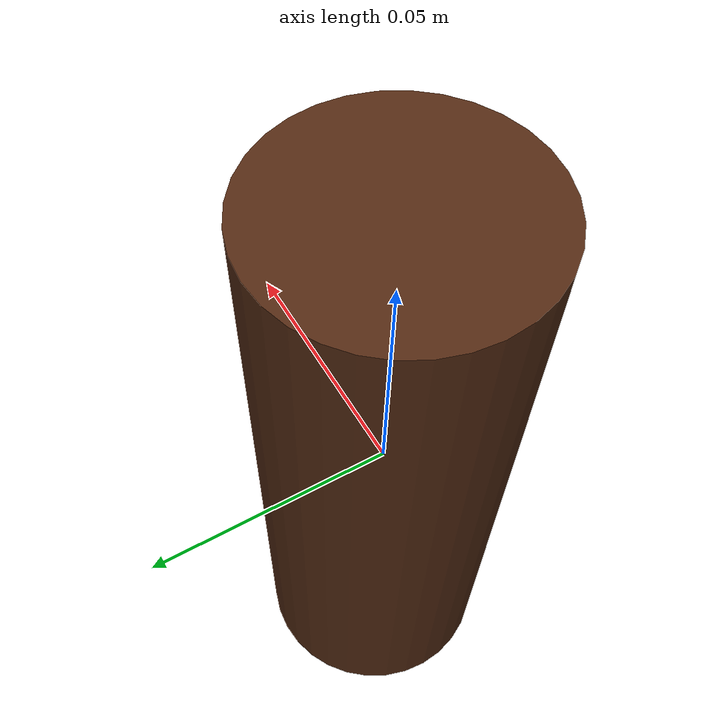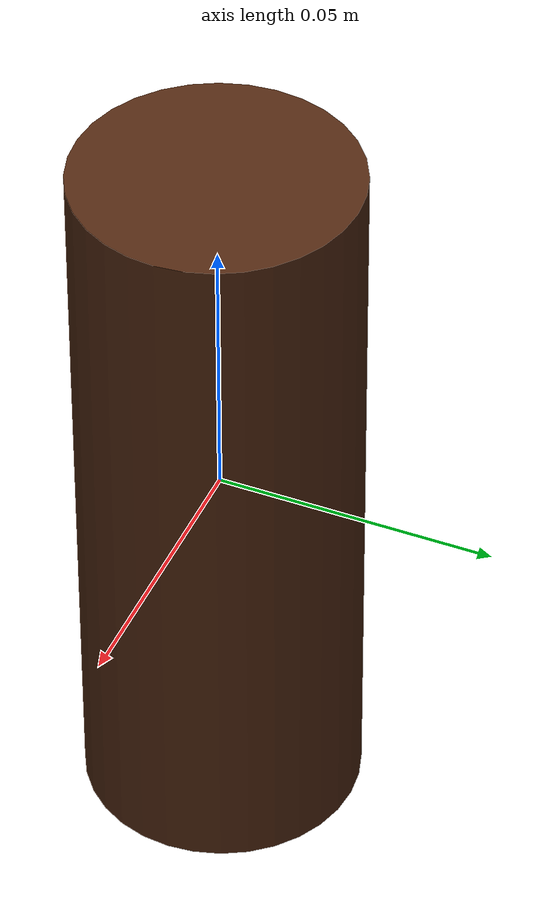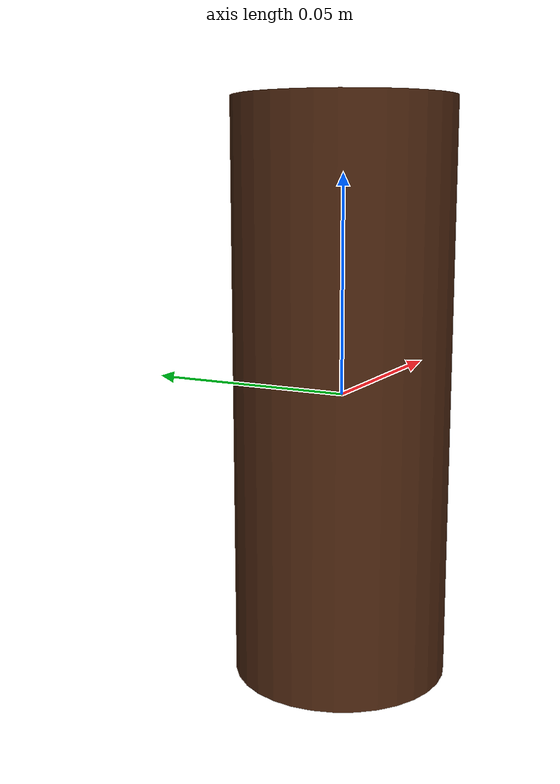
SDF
<?xml version="1.0"?>
<sdf version="1.9">
  <model name="can_coffee">
    <static>false</static>
    <link name="can_coffee_link">
      <velocity_decay>
        <linear>0.400000</linear>
        <angular>0.800000</angular>
      </velocity_decay>
      <inertial>
        <mass>0.100000</mass>
        <inertia>
          <ixx>0.000100000</ixx>
          <iyy>0.000100000</iyy>
          <izz>0.000100000</izz>
          <ixy>0</ixy>
          <ixz>0</ixz>
          <iyz>0</iyz>
        </inertia>
      </inertial>
      <visual name="can_coffee_visual">
        <geometry>
          <mesh>
            <uri>meshes/can_coffee.obj</uri>
          </mesh>
        </geometry>
        <material>
          <ambient>0.080000 0.040000 0.017500 1.000000</ambient>
          <diffuse>0.320000 0.160000 0.070000 1.000000</diffuse>
          <specular>0.120000 0.120000 0.120000 1.000000</specular>
        </material>
      </visual>
      <collision name="can_coffee_can_coffee_collision">
        <pose>0.000000000 0.000000000 0.000000000 0 0 0</pose>
        <geometry>
          <box>
            <size>0.050000001 0.050000001 0.133000001</size>
          </box>
        </geometry>
        <max_contacts>20</max_contacts>
        <surface>
          <friction>
            <ode>
              <mu>6.0</mu>
              <mu2>6.0</mu2>
              <slip1>0.0</slip1>
              <slip2>0.0</slip2>
            </ode>
            <torsional>
              <coefficient>1.0</coefficient>
              <use_patch_radius>true</use_patch_radius>
              <patch_radius>0.020000</patch_radius>
              <surface_radius>0.010000</surface_radius>
              <ode>
                <slip>0.0</slip>
              </ode>
            </torsional>
          </friction>
          <contact>
            <ode>
              <soft_cfm>0.000000</soft_cfm>
              <soft_erp>0.800000</soft_erp>
              <kp>1000000.000000</kp>
              <kd>100.000000</kd>
              <max_vel>0.010000</max_vel>
              <min_depth>0.002000</min_depth>
            </ode>
          </contact>
        </surface>
      </collision>
    </link>
  </model>
</sdf>
